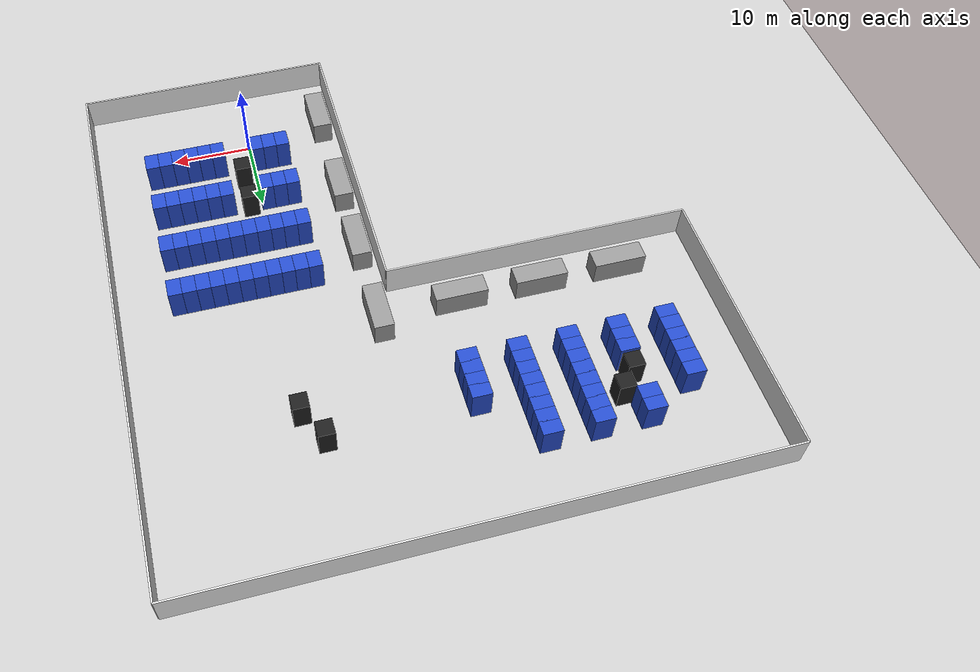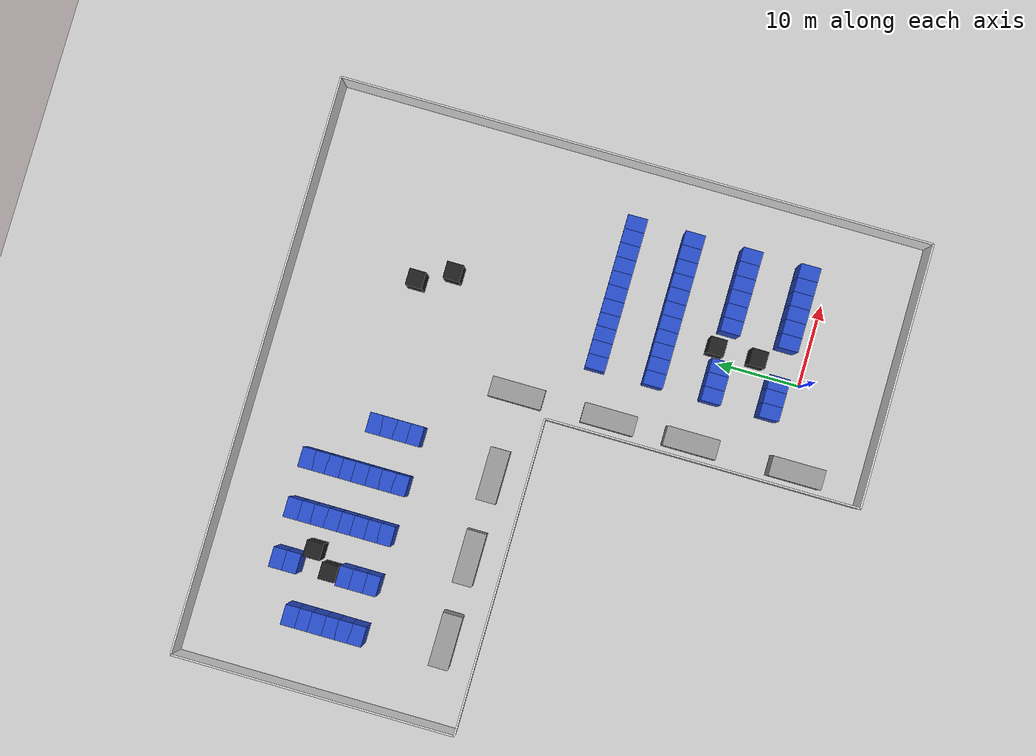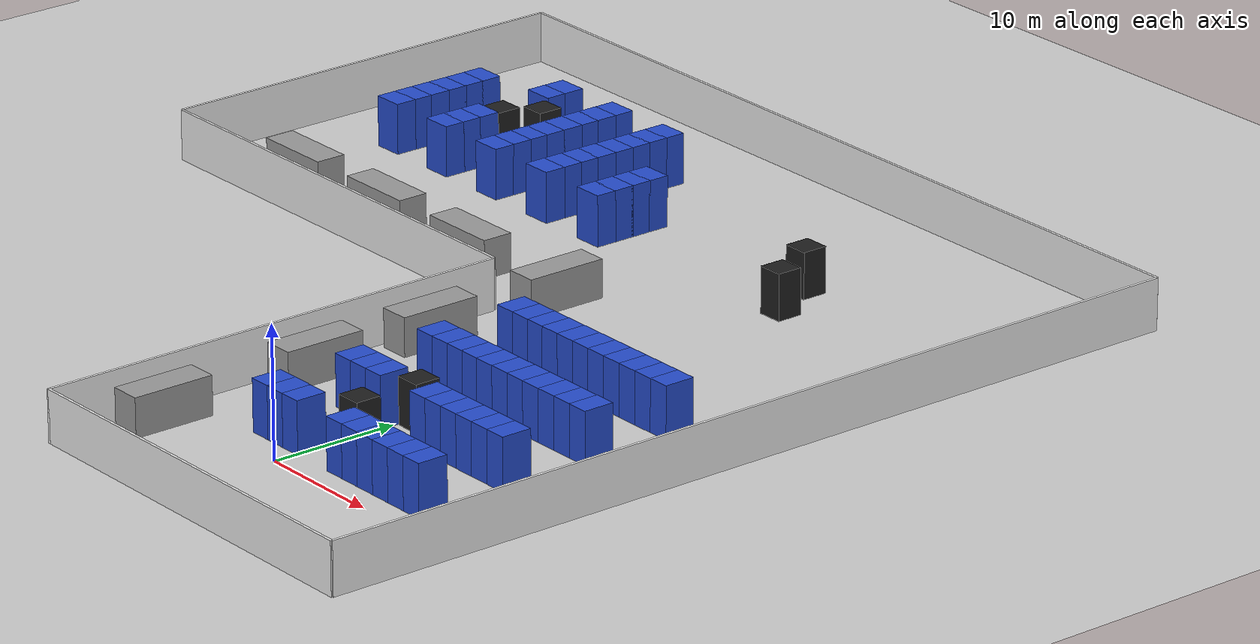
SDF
<?xml version="1.0" ?>
<sdf version="1.4">
  <world name="default">
    <!-- A ground plane -->
    <include>
      <uri>model://ground_plane</uri>
    </include>
    <!-- A global light source -->
    <include>
      <uri>model://sun</uri>
    </include>

    <model name="Wall_1">
      <static>true</static>
      <pose>20.0 26.0 2.0 0 0 0</pose>
      <link name="link">
        <collision name="collision">
          <geometry>
            <box>
              <size>0.2 72.0 4.0</size>
            </box>
          </geometry>
        </collision>
        <visual name="visual">
          <geometry>
            <box>
              <size>0.2 72.0 4.0</size>
            </box>
          </geometry>
          <material>
            <script>
              <uri>file://media/materials/scripts/gazebo.material</uri>
              <name>Gazebo/White</name>
            </script>
          </material>
        </visual>
      </link>
    </model>

    <model name="Wall_2">
      <static>true</static>
      <pose>-50.0 45.0 2.0 0 0 0</pose>
      <link name="link">
        <collision name="collision">
          <geometry>
            <box>
              <size>0.2 34.0 4.0</size>
            </box>
          </geometry>
        </collision>
        <visual name="visual">
          <geometry>
            <box>
              <size>0.2 34.0 4.0</size>
            </box>
          </geometry>
          <material>
            <script>
              <uri>file://media/materials/scripts/gazebo.material</uri>
              <name>Gazebo/White</name>
            </script>
          </material>
        </visual>
      </link>
    </model>

    <model name="Wall_3">
      <static>true</static>
      <pose>-12.0 8.9 2.0 0 0 0</pose>
      <link name="link">
        <collision name="collision">
          <geometry>
            <box>
              <size>0.2 38.0 4.0</size>
            </box>
          </geometry>
        </collision>
        <visual name="visual">
          <geometry>
            <box>
              <size>0.2 38.0 4.0</size>
            </box>
          </geometry>
          <material>
            <script>
              <uri>file://media/materials/scripts/gazebo.material</uri>
              <name>Gazebo/White</name>
            </script>
          </material>
        </visual>
      </link>
    </model>

    <model name="Wall_4">
      <static>true</static>
      <pose>4.0 -10.0 2.0 0 0 0</pose>
      <link name="link">
        <collision name="collision">
          <geometry>
            <box>
              <size>32.0 0.2 4.0</size>
            </box>
          </geometry>
        </collision>
        <visual name="visual">
          <geometry>
            <box>
              <size>32.0 0.2 4.0</size>
            </box>
          </geometry>
          <material>
            <script>
              <uri>file://media/materials/scripts/gazebo.material</uri>
              <name>Gazebo/White</name>
            </script>
          </material>
        </visual>
      </link>
    </model>

    <model name="Wall_5">
      <static>true</static>
      <pose>-15.0 62.0 2.0 0 0 0</pose>
      <link name="link">
        <collision name="collision">
          <geometry>
            <box>
              <size>70.0 0.2 4.0</size>
            </box>
          </geometry>
        </collision>
        <visual name="visual">
          <geometry>
            <box>
              <size>70.0 0.2 4.0</size>
            </box>
          </geometry>
          <material>
            <script>
              <uri>file://media/materials/scripts/gazebo.material</uri>
              <name>Gazebo/White</name>
            </script>
          </material>
        </visual>
      </link>
    </model>

    <model name="Wall_6">
      <static>true</static>
      <pose>-31.0 28.0 2.0 0 0 0</pose>
      <link name="link">
        <collision name="collision">
          <geometry>
            <box>
              <size>38.0 0.2 4.0</size>
            </box>
          </geometry>
        </collision>
        <visual name="visual">
          <geometry>
            <box>
              <size>38.0 0.2 4.0</size>
            </box>
          </geometry>
          <material>
            <script>
              <uri>file://media/materials/scripts/gazebo.material</uri>
              <name>Gazebo/White</name>
            </script>
          </material>
        </visual>
      </link>
    </model>

    <model name="Cabinet2_0046">
      <static>true</static>
      <pose>-4.1 3.0 2.0 0 0 0</pose>
      <link name="link">
        <collision name="collision">
          <geometry>
            <box>
              <size>1.7 2.4 4.0</size>
            </box>
          </geometry>
        </collision>
        <visual name="visual">
          <geometry>
            <box>
              <size>1.7 2.4 4.0</size>
            </box>
          </geometry>
          <material>
            <script>
              <uri>file://media/materials/scripts/gazebo.material</uri>
              <name>Gazebo/Blue</name>
            </script>
          </material>
        </visual>
      </link>
    </model>

    <model name="Cabinet2_0047">
      <static>true</static>
      <pose>-2.4 3.0 2.0 0 0 0</pose>
      <link name="link">
        <collision name="collision">
          <geometry>
            <box>
              <size>1.7 2.4 4.0</size>
            </box>
          </geometry>
        </collision>
        <visual name="visual">
          <geometry>
            <box>
              <size>1.7 2.4 4.0</size>
            </box>
          </geometry>
          <material>
            <script>
              <uri>file://media/materials/scripts/gazebo.material</uri>
              <name>Gazebo/Blue</name>
            </script>
          </material>
        </visual>
      </link>
    </model>

    <model name="Cabinet2_0048">
      <static>true</static>
      <pose>-0.7 3.0 2.0 0 0 0</pose>
      <link name="link">
        <collision name="collision">
          <geometry>
            <box>
              <size>1.7 2.4 4.0</size>
            </box>
          </geometry>
        </collision>
        <visual name="visual">
          <geometry>
            <box>
              <size>1.7 2.4 4.0</size>
            </box>
          </geometry>
          <material>
            <script>
              <uri>file://media/materials/scripts/gazebo.material</uri>
              <name>Gazebo/Blue</name>
            </script>
          </material>
        </visual>
      </link>
    </model>

    <model name="Cabinet2_0033">
      <static>true</static>
      <pose>4.3 3.0 2.0 0 0 0</pose>
      <link name="link">
        <collision name="collision">
          <geometry>
            <box>
              <size>1.7 2.4 4.0</size>
            </box>
          </geometry>
        </collision>
        <visual name="visual">
          <geometry>
            <box>
              <size>1.7 2.4 4.0</size>
            </box>
          </geometry>
          <material>
            <script>
              <uri>file://media/materials/scripts/gazebo.material</uri>
              <name>Gazebo/Blue</name>
            </script>
          </material>
        </visual>
      </link>
    </model>

    <model name="Cabinet2_0032">
      <static>true</static>
      <pose>6.0 3.0 2.0 0 0 0</pose>
      <link name="link">
        <collision name="collision">
          <geometry>
            <box>
              <size>1.7 2.4 4.0</size>
            </box>
          </geometry>
        </collision>
        <visual name="visual">
          <geometry>
            <box>
              <size>1.7 2.4 4.0</size>
            </box>
          </geometry>
          <material>
            <script>
              <uri>file://media/materials/scripts/gazebo.material</uri>
              <name>Gazebo/Blue</name>
            </script>
          </material>
        </visual>
      </link>
    </model>

    <model name="Cabinet2_0031">
      <static>true</static>
      <pose>7.7 3.0 2.0 0 0 0</pose>
      <link name="link">
        <collision name="collision">
          <geometry>
            <box>
              <size>1.7 2.4 4.0</size>
            </box>
          </geometry>
        </collision>
        <visual name="visual">
          <geometry>
            <box>
              <size>1.7 2.4 4.0</size>
            </box>
          </geometry>
          <material>
            <script>
              <uri>file://media/materials/scripts/gazebo.material</uri>
              <name>Gazebo/Blue</name>
            </script>
          </material>
        </visual>
      </link>
    </model>

    <model name="Cabinet2_0030">
      <static>true</static>
      <pose>9.4 3.0 2.0 0 0 0</pose>
      <link name="link">
        <collision name="collision">
          <geometry>
            <box>
              <size>1.7 2.4 4.0</size>
            </box>
          </geometry>
        </collision>
        <visual name="visual">
          <geometry>
            <box>
              <size>1.7 2.4 4.0</size>
            </box>
          </geometry>
          <material>
            <script>
              <uri>file://media/materials/scripts/gazebo.material</uri>
              <name>Gazebo/Blue</name>
            </script>
          </material>
        </visual>
      </link>
    </model>

    <model name="Cabinet2_0029">
      <static>true</static>
      <pose>11.1 3.0 2.0 0 0 0</pose>
      <link name="link">
        <collision name="collision">
          <geometry>
            <box>
              <size>1.7 2.4 4.0</size>
            </box>
          </geometry>
        </collision>
        <visual name="visual">
          <geometry>
            <box>
              <size>1.7 2.4 4.0</size>
            </box>
          </geometry>
          <material>
            <script>
              <uri>file://media/materials/scripts/gazebo.material</uri>
              <name>Gazebo/Blue</name>
            </script>
          </material>
        </visual>
      </link>
    </model>

    <model name="Cabinet2_0028">
      <static>true</static>
      <pose>12.8 3.0 2.0 0 0 0</pose>
      <link name="link">
        <collision name="collision">
          <geometry>
            <box>
              <size>1.7 2.4 4.0</size>
            </box>
          </geometry>
        </collision>
        <visual name="visual">
          <geometry>
            <box>
              <size>1.7 2.4 4.0</size>
            </box>
          </geometry>
          <material>
            <script>
              <uri>file://media/materials/scripts/gazebo.material</uri>
              <name>Gazebo/Blue</name>
            </script>
          </material>
        </visual>
      </link>
    </model>

    <model name="Cabinet__1">
      <static>true</static>
      <pose>-4.1 10.0 2.0 0 0 0</pose>
      <link name="link">
        <collision name="collision">
          <geometry>
            <box>
              <size>1.7 2.4 4.0</size>
            </box>
          </geometry>
        </collision>
        <visual name="visual">
          <geometry>
            <box>
              <size>1.7 2.4 4.0</size>
            </box>
          </geometry>
          <material>
            <script>
              <uri>file://media/materials/scripts/gazebo.material</uri>
              <name>Gazebo/Blue</name>
            </script>
          </material>
        </visual>
      </link>
    </model>

    <model name="Cabinet__2">
      <static>true</static>
      <pose>-2.4 10.0 2.0 0 0 0</pose>
      <link name="link">
        <collision name="collision">
          <geometry>
            <box>
              <size>1.7 2.4 4.0</size>
            </box>
          </geometry>
        </collision>
        <visual name="visual">
          <geometry>
            <box>
              <size>1.7 2.4 4.0</size>
            </box>
          </geometry>
          <material>
            <script>
              <uri>file://media/materials/scripts/gazebo.material</uri>
              <name>Gazebo/Blue</name>
            </script>
          </material>
        </visual>
      </link>
    </model>

    <model name="Cabinet__3">
      <static>true</static>
      <pose>-0.7 10.0 2.0 0 0 0</pose>
      <link name="link">
        <collision name="collision">
          <geometry>
            <box>
              <size>1.7 2.4 4.0</size>
            </box>
          </geometry>
        </collision>
        <visual name="visual">
          <geometry>
            <box>
              <size>1.7 2.4 4.0</size>
            </box>
          </geometry>
          <material>
            <script>
              <uri>file://media/materials/scripts/gazebo.material</uri>
              <name>Gazebo/Blue</name>
            </script>
          </material>
        </visual>
      </link>
    </model>

    <model name="Cabinet__4">
      <static>true</static>
      <pose>4.3 10.0 2.0 0 0 0</pose>
      <link name="link">
        <collision name="collision">
          <geometry>
            <box>
              <size>1.7 2.4 4.0</size>
            </box>
          </geometry>
        </collision>
        <visual name="visual">
          <geometry>
            <box>
              <size>1.7 2.4 4.0</size>
            </box>
          </geometry>
          <material>
            <script>
              <uri>file://media/materials/scripts/gazebo.material</uri>
              <name>Gazebo/Blue</name>
            </script>
          </material>
        </visual>
      </link>
    </model>

    <model name="Cabinet__5">
      <static>true</static>
      <pose>6.0 10.0 2.0 0 0 0</pose>
      <link name="link">
        <collision name="collision">
          <geometry>
            <box>
              <size>1.7 2.4 4.0</size>
            </box>
          </geometry>
        </collision>
        <visual name="visual">
          <geometry>
            <box>
              <size>1.7 2.4 4.0</size>
            </box>
          </geometry>
          <material>
            <script>
              <uri>file://media/materials/scripts/gazebo.material</uri>
              <name>Gazebo/Blue</name>
            </script>
          </material>
        </visual>
      </link>
    </model>

    <model name="Cabinet__6">
      <static>true</static>
      <pose>7.7 10.0 2.0 0 0 0</pose>
      <link name="link">
        <collision name="collision">
          <geometry>
            <box>
              <size>1.7 2.4 4.0</size>
            </box>
          </geometry>
        </collision>
        <visual name="visual">
          <geometry>
            <box>
              <size>1.7 2.4 4.0</size>
            </box>
          </geometry>
          <material>
            <script>
              <uri>file://media/materials/scripts/gazebo.material</uri>
              <name>Gazebo/Blue</name>
            </script>
          </material>
        </visual>
      </link>
    </model>

    <model name="Cabinet__7">
      <static>true</static>
      <pose>9.4 10.0 2.0 0 0 0</pose>
      <link name="link">
        <collision name="collision">
          <geometry>
            <box>
              <size>1.7 2.4 4.0</size>
            </box>
          </geometry>
        </collision>
        <visual name="visual">
          <geometry>
            <box>
              <size>1.7 2.4 4.0</size>
            </box>
          </geometry>
          <material>
            <script>
              <uri>file://media/materials/scripts/gazebo.material</uri>
              <name>Gazebo/Blue</name>
            </script>
          </material>
        </visual>
      </link>
    </model>

    <model name="Cabinet__8">
      <static>true</static>
      <pose>11.1 10.0 2.0 0 0 0</pose>
      <link name="link">
        <collision name="collision">
          <geometry>
            <box>
              <size>1.7 2.4 4.0</size>
            </box>
          </geometry>
        </collision>
        <visual name="visual">
          <geometry>
            <box>
              <size>1.7 2.4 4.0</size>
            </box>
          </geometry>
          <material>
            <script>
              <uri>file://media/materials/scripts/gazebo.material</uri>
              <name>Gazebo/Blue</name>
            </script>
          </material>
        </visual>
      </link>
    </model>

    <model name="Cabinet__9">
      <static>true</static>
      <pose>12.8 10.0 2.0 0 0 0</pose>
      <link name="link">
        <collision name="collision">
          <geometry>
            <box>
              <size>1.7 2.4 4.0</size>
            </box>
          </geometry>
        </collision>
        <visual name="visual">
          <geometry>
            <box>
              <size>1.7 2.4 4.0</size>
            </box>
          </geometry>
          <material>
            <script>
              <uri>file://media/materials/scripts/gazebo.material</uri>
              <name>Gazebo/Blue</name>
            </script>
          </material>
        </visual>
      </link>
    </model>

    <model name="Cabinet2_0010">
      <static>true</static>
      <pose>-4.1 17.0 2.0 0 0 0</pose>
      <link name="link">
        <collision name="collision">
          <geometry>
            <box>
              <size>1.7 2.4 4.0</size>
            </box>
          </geometry>
        </collision>
        <visual name="visual">
          <geometry>
            <box>
              <size>1.7 2.4 4.0</size>
            </box>
          </geometry>
          <material>
            <script>
              <uri>file://media/materials/scripts/gazebo.material</uri>
              <name>Gazebo/Blue</name>
            </script>
          </material>
        </visual>
      </link>
    </model>

    <model name="Cabinet2__10">
      <static>true</static>
      <pose>-2.4 17.0 2.0 0 0 0</pose>
      <link name="link">
        <collision name="collision">
          <geometry>
            <box>
              <size>1.7 2.4 4.0</size>
            </box>
          </geometry>
        </collision>
        <visual name="visual">
          <geometry>
            <box>
              <size>1.7 2.4 4.0</size>
            </box>
          </geometry>
          <material>
            <script>
              <uri>file://media/materials/scripts/gazebo.material</uri>
              <name>Gazebo/Blue</name>
            </script>
          </material>
        </visual>
      </link>
    </model>

    <model name="Cabinet2__11">
      <static>true</static>
      <pose>-0.7 17.0 2.0 0 0 0</pose>
      <link name="link">
        <collision name="collision">
          <geometry>
            <box>
              <size>1.7 2.4 4.0</size>
            </box>
          </geometry>
        </collision>
        <visual name="visual">
          <geometry>
            <box>
              <size>1.7 2.4 4.0</size>
            </box>
          </geometry>
          <material>
            <script>
              <uri>file://media/materials/scripts/gazebo.material</uri>
              <name>Gazebo/Blue</name>
            </script>
          </material>
        </visual>
      </link>
    </model>

    <model name="Cabinet2_0012">
      <static>true</static>
      <pose>0.9 17.0 2.0 0 0 0</pose>
      <link name="link">
        <collision name="collision">
          <geometry>
            <box>
              <size>1.7 2.4 4.0</size>
            </box>
          </geometry>
        </collision>
        <visual name="visual">
          <geometry>
            <box>
              <size>1.7 2.4 4.0</size>
            </box>
          </geometry>
          <material>
            <script>
              <uri>file://media/materials/scripts/gazebo.material</uri>
              <name>Gazebo/Blue</name>
            </script>
          </material>
        </visual>
      </link>
    </model>

    <model name="Cabinet2_0013">
      <static>true</static>
      <pose>2.6 17.0 2.0 0 0 0</pose>
      <link name="link">
        <collision name="collision">
          <geometry>
            <box>
              <size>1.7 2.4 4.0</size>
            </box>
          </geometry>
        </collision>
        <visual name="visual">
          <geometry>
            <box>
              <size>1.7 2.4 4.0</size>
            </box>
          </geometry>
          <material>
            <script>
              <uri>file://media/materials/scripts/gazebo.material</uri>
              <name>Gazebo/Blue</name>
            </script>
          </material>
        </visual>
      </link>
    </model>

    <model name="Cabinet2_0011">
      <static>true</static>
      <pose>4.3 17.0 2.0 0 0 0</pose>
      <link name="link">
        <collision name="collision">
          <geometry>
            <box>
              <size>1.7 2.4 4.0</size>
            </box>
          </geometry>
        </collision>
        <visual name="visual">
          <geometry>
            <box>
              <size>1.7 2.4 4.0</size>
            </box>
          </geometry>
          <material>
            <script>
              <uri>file://media/materials/scripts/gazebo.material</uri>
              <name>Gazebo/Blue</name>
            </script>
          </material>
        </visual>
      </link>
    </model>

    <model name="Cabinet2_0014">
      <static>true</static>
      <pose>6.0 17.0 2.0 0 0 0</pose>
      <link name="link">
        <collision name="collision">
          <geometry>
            <box>
              <size>1.7 2.4 4.0</size>
            </box>
          </geometry>
        </collision>
        <visual name="visual">
          <geometry>
            <box>
              <size>1.7 2.4 4.0</size>
            </box>
          </geometry>
          <material>
            <script>
              <uri>file://media/materials/scripts/gazebo.material</uri>
              <name>Gazebo/Blue</name>
            </script>
          </material>
        </visual>
      </link>
    </model>

    <model name="Cabinet2_0015">
      <static>true</static>
      <pose>7.7 17.0 2.0 0 0 0</pose>
      <link name="link">
        <collision name="collision">
          <geometry>
            <box>
              <size>1.7 2.4 4.0</size>
            </box>
          </geometry>
        </collision>
        <visual name="visual">
          <geometry>
            <box>
              <size>1.7 2.4 4.0</size>
            </box>
          </geometry>
          <material>
            <script>
              <uri>file://media/materials/scripts/gazebo.material</uri>
              <name>Gazebo/Blue</name>
            </script>
          </material>
        </visual>
      </link>
    </model>

    <model name="Cabinet2_0016">
      <static>true</static>
      <pose>9.4 17.0 2.0 0 0 0</pose>
      <link name="link">
        <collision name="collision">
          <geometry>
            <box>
              <size>1.7 2.4 4.0</size>
            </box>
          </geometry>
        </collision>
        <visual name="visual">
          <geometry>
            <box>
              <size>1.7 2.4 4.0</size>
            </box>
          </geometry>
          <material>
            <script>
              <uri>file://media/materials/scripts/gazebo.material</uri>
              <name>Gazebo/Blue</name>
            </script>
          </material>
        </visual>
      </link>
    </model>

    <model name="Cabinet2__12">
      <static>true</static>
      <pose>11.1 17.0 2.0 0 0 0</pose>
      <link name="link">
        <collision name="collision">
          <geometry>
            <box>
              <size>1.7 2.4 4.0</size>
            </box>
          </geometry>
        </collision>
        <visual name="visual">
          <geometry>
            <box>
              <size>1.7 2.4 4.0</size>
            </box>
          </geometry>
          <material>
            <script>
              <uri>file://media/materials/scripts/gazebo.material</uri>
              <name>Gazebo/Blue</name>
            </script>
          </material>
        </visual>
      </link>
    </model>

    <model name="Cabinet2__13">
      <static>true</static>
      <pose>12.8 17.0 2.0 0 0 0</pose>
      <link name="link">
        <collision name="collision">
          <geometry>
            <box>
              <size>1.7 2.4 4.0</size>
            </box>
          </geometry>
        </collision>
        <visual name="visual">
          <geometry>
            <box>
              <size>1.7 2.4 4.0</size>
            </box>
          </geometry>
          <material>
            <script>
              <uri>file://media/materials/scripts/gazebo.material</uri>
              <name>Gazebo/Blue</name>
            </script>
          </material>
        </visual>
      </link>
    </model>

    <model name="Cabinet__14">
      <static>true</static>
      <pose>-4.1 24.0 2.0 0 0 0</pose>
      <link name="link">
        <collision name="collision">
          <geometry>
            <box>
              <size>1.7 2.4 4.0</size>
            </box>
          </geometry>
        </collision>
        <visual name="visual">
          <geometry>
            <box>
              <size>1.7 2.4 4.0</size>
            </box>
          </geometry>
          <material>
            <script>
              <uri>file://media/materials/scripts/gazebo.material</uri>
              <name>Gazebo/Blue</name>
            </script>
          </material>
        </visual>
      </link>
    </model>

    <model name="Cabinet__15">
      <static>true</static>
      <pose>-2.4 24.0 2.0 0 0 0</pose>
      <link name="link">
        <collision name="collision">
          <geometry>
            <box>
              <size>1.7 2.4 4.0</size>
            </box>
          </geometry>
        </collision>
        <visual name="visual">
          <geometry>
            <box>
              <size>1.7 2.4 4.0</size>
            </box>
          </geometry>
          <material>
            <script>
              <uri>file://media/materials/scripts/gazebo.material</uri>
              <name>Gazebo/Blue</name>
            </script>
          </material>
        </visual>
      </link>
    </model>

    <model name="Cabinet__16">
      <static>true</static>
      <pose>-0.7 24.0 2.0 0 0 0</pose>
      <link name="link">
        <collision name="collision">
          <geometry>
            <box>
              <size>1.7 2.4 4.0</size>
            </box>
          </geometry>
        </collision>
        <visual name="visual">
          <geometry>
            <box>
              <size>1.7 2.4 4.0</size>
            </box>
          </geometry>
          <material>
            <script>
              <uri>file://media/materials/scripts/gazebo.material</uri>
              <name>Gazebo/Blue</name>
            </script>
          </material>
        </visual>
      </link>
    </model>

    <model name="Cabinet__17">
      <static>true</static>
      <pose>0.9 24.0 2.0 0 0 0</pose>
      <link name="link">
        <collision name="collision">
          <geometry>
            <box>
              <size>1.7 2.4 4.0</size>
            </box>
          </geometry>
        </collision>
        <visual name="visual">
          <geometry>
            <box>
              <size>1.7 2.4 4.0</size>
            </box>
          </geometry>
          <material>
            <script>
              <uri>file://media/materials/scripts/gazebo.material</uri>
              <name>Gazebo/Blue</name>
            </script>
          </material>
        </visual>
      </link>
    </model>

    <model name="Cabinet__18">
      <static>true</static>
      <pose>2.6 24.0 2.0 0 0 0</pose>
      <link name="link">
        <collision name="collision">
          <geometry>
            <box>
              <size>1.7 2.4 4.0</size>
            </box>
          </geometry>
        </collision>
        <visual name="visual">
          <geometry>
            <box>
              <size>1.7 2.4 4.0</size>
            </box>
          </geometry>
          <material>
            <script>
              <uri>file://media/materials/scripts/gazebo.material</uri>
              <name>Gazebo/Blue</name>
            </script>
          </material>
        </visual>
      </link>
    </model>

    <model name="Cabinet__19">
      <static>true</static>
      <pose>4.3 24.0 2.0 0 0 0</pose>
      <link name="link">
        <collision name="collision">
          <geometry>
            <box>
              <size>1.7 2.4 4.0</size>
            </box>
          </geometry>
        </collision>
        <visual name="visual">
          <geometry>
            <box>
              <size>1.7 2.4 4.0</size>
            </box>
          </geometry>
          <material>
            <script>
              <uri>file://media/materials/scripts/gazebo.material</uri>
              <name>Gazebo/Blue</name>
            </script>
          </material>
        </visual>
      </link>
    </model>

    <model name="Cabinet__20">
      <static>true</static>
      <pose>6.0 24.0 2.0 0 0 0</pose>
      <link name="link">
        <collision name="collision">
          <geometry>
            <box>
              <size>1.7 2.4 4.0</size>
            </box>
          </geometry>
        </collision>
        <visual name="visual">
          <geometry>
            <box>
              <size>1.7 2.4 4.0</size>
            </box>
          </geometry>
          <material>
            <script>
              <uri>file://media/materials/scripts/gazebo.material</uri>
              <name>Gazebo/Blue</name>
            </script>
          </material>
        </visual>
      </link>
    </model>

    <model name="Cabinet__21">
      <static>true</static>
      <pose>7.7 24.0 2.0 0 0 0</pose>
      <link name="link">
        <collision name="collision">
          <geometry>
            <box>
              <size>1.7 2.4 4.0</size>
            </box>
          </geometry>
        </collision>
        <visual name="visual">
          <geometry>
            <box>
              <size>1.7 2.4 4.0</size>
            </box>
          </geometry>
          <material>
            <script>
              <uri>file://media/materials/scripts/gazebo.material</uri>
              <name>Gazebo/Blue</name>
            </script>
          </material>
        </visual>
      </link>
    </model>

    <model name="Cabinet__22">
      <static>true</static>
      <pose>9.4 24.0 2.0 0 0 0</pose>
      <link name="link">
        <collision name="collision">
          <geometry>
            <box>
              <size>1.7 2.4 4.0</size>
            </box>
          </geometry>
        </collision>
        <visual name="visual">
          <geometry>
            <box>
              <size>1.7 2.4 4.0</size>
            </box>
          </geometry>
          <material>
            <script>
              <uri>file://media/materials/scripts/gazebo.material</uri>
              <name>Gazebo/Blue</name>
            </script>
          </material>
        </visual>
      </link>
    </model>

    <model name="Cabinet__23">
      <static>true</static>
      <pose>11.1 24.0 2.0 0 0 0</pose>
      <link name="link">
        <collision name="collision">
          <geometry>
            <box>
              <size>1.7 2.4 4.0</size>
            </box>
          </geometry>
        </collision>
        <visual name="visual">
          <geometry>
            <box>
              <size>1.7 2.4 4.0</size>
            </box>
          </geometry>
          <material>
            <script>
              <uri>file://media/materials/scripts/gazebo.material</uri>
              <name>Gazebo/Blue</name>
            </script>
          </material>
        </visual>
      </link>
    </model>

    <model name="Cabinet__24">
      <static>true</static>
      <pose>12.8 24.0 2.0 0 0 0</pose>
      <link name="link">
        <collision name="collision">
          <geometry>
            <box>
              <size>1.7 2.4 4.0</size>
            </box>
          </geometry>
        </collision>
        <visual name="visual">
          <geometry>
            <box>
              <size>1.7 2.4 4.0</size>
            </box>
          </geometry>
          <material>
            <script>
              <uri>file://media/materials/scripts/gazebo.material</uri>
              <name>Gazebo/Blue</name>
            </script>
          </material>
        </visual>
      </link>
    </model>

    <model name="Cabinet4__25">
      <static>true</static>
      <pose>-18.0 42.0 2.0 0 0 0</pose>
      <link name="link">
        <collision name="collision">
          <geometry>
            <box>
              <size>2.4 1.7 4.0</size>
            </box>
          </geometry>
        </collision>
        <visual name="visual">
          <geometry>
            <box>
              <size>2.4 1.7 4.0</size>
            </box>
          </geometry>
          <material>
            <script>
              <uri>file://media/materials/scripts/gazebo.material</uri>
              <name>Gazebo/Blue</name>
            </script>
          </material>
        </visual>
      </link>
    </model>

    <model name="Cabinet4__26">
      <static>true</static>
      <pose>-18.0 43.6 2.0 0 0 0</pose>
      <link name="link">
        <collision name="collision">
          <geometry>
            <box>
              <size>2.4 1.7 4.0</size>
            </box>
          </geometry>
        </collision>
        <visual name="visual">
          <geometry>
            <box>
              <size>2.4 1.7 4.0</size>
            </box>
          </geometry>
          <material>
            <script>
              <uri>file://media/materials/scripts/gazebo.material</uri>
              <name>Gazebo/Blue</name>
            </script>
          </material>
        </visual>
      </link>
    </model>

    <model name="Cabinet4__27">
      <static>true</static>
      <pose>-18.0 45.2 2.0 0 0 0</pose>
      <link name="link">
        <collision name="collision">
          <geometry>
            <box>
              <size>2.4 1.7 4.0</size>
            </box>
          </geometry>
        </collision>
        <visual name="visual">
          <geometry>
            <box>
              <size>2.4 1.7 4.0</size>
            </box>
          </geometry>
          <material>
            <script>
              <uri>file://media/materials/scripts/gazebo.material</uri>
              <name>Gazebo/Blue</name>
            </script>
          </material>
        </visual>
      </link>
    </model>

    <model name="Cabinet4__28">
      <static>true</static>
      <pose>-18.0 46.8 2.0 0 0 0</pose>
      <link name="link">
        <collision name="collision">
          <geometry>
            <box>
              <size>2.4 1.7 4.0</size>
            </box>
          </geometry>
        </collision>
        <visual name="visual">
          <geometry>
            <box>
              <size>2.4 1.7 4.0</size>
            </box>
          </geometry>
          <material>
            <script>
              <uri>file://media/materials/scripts/gazebo.material</uri>
              <name>Gazebo/Blue</name>
            </script>
          </material>
        </visual>
      </link>
    </model>

    <model name="Cabinet4__29">
      <static>true</static>
      <pose>-24.0 42.0 2.0 0 0 0</pose>
      <link name="link">
        <collision name="collision">
          <geometry>
            <box>
              <size>2.4 1.7 4.0</size>
            </box>
          </geometry>
        </collision>
        <visual name="visual">
          <geometry>
            <box>
              <size>2.4 1.7 4.0</size>
            </box>
          </geometry>
          <material>
            <script>
              <uri>file://media/materials/scripts/gazebo.material</uri>
              <name>Gazebo/Blue</name>
            </script>
          </material>
        </visual>
      </link>
    </model>

    <model name="Cabinet4__30">
      <static>true</static>
      <pose>-24.0 43.6 2.0 0 0 0</pose>
      <link name="link">
        <collision name="collision">
          <geometry>
            <box>
              <size>2.4 1.7 4.0</size>
            </box>
          </geometry>
        </collision>
        <visual name="visual">
          <geometry>
            <box>
              <size>2.4 1.7 4.0</size>
            </box>
          </geometry>
          <material>
            <script>
              <uri>file://media/materials/scripts/gazebo.material</uri>
              <name>Gazebo/Blue</name>
            </script>
          </material>
        </visual>
      </link>
    </model>

    <model name="Cabinet4__31">
      <static>true</static>
      <pose>-24.0 45.2 2.0 0 0 0</pose>
      <link name="link">
        <collision name="collision">
          <geometry>
            <box>
              <size>2.4 1.7 4.0</size>
            </box>
          </geometry>
        </collision>
        <visual name="visual">
          <geometry>
            <box>
              <size>2.4 1.7 4.0</size>
            </box>
          </geometry>
          <material>
            <script>
              <uri>file://media/materials/scripts/gazebo.material</uri>
              <name>Gazebo/Blue</name>
            </script>
          </material>
        </visual>
      </link>
    </model>

    <model name="Cabinet4__32">
      <static>true</static>
      <pose>-24.0 46.8 2.0 0 0 0</pose>
      <link name="link">
        <collision name="collision">
          <geometry>
            <box>
              <size>2.4 1.7 4.0</size>
            </box>
          </geometry>
        </collision>
        <visual name="visual">
          <geometry>
            <box>
              <size>2.4 1.7 4.0</size>
            </box>
          </geometry>
          <material>
            <script>
              <uri>file://media/materials/scripts/gazebo.material</uri>
              <name>Gazebo/Blue</name>
            </script>
          </material>
        </visual>
      </link>
    </model>

    <model name="Cabinet4__33">
      <static>true</static>
      <pose>-24.0 48.4 2.0 0 0 0</pose>
      <link name="link">
        <collision name="collision">
          <geometry>
            <box>
              <size>2.4 1.7 4.0</size>
            </box>
          </geometry>
        </collision>
        <visual name="visual">
          <geometry>
            <box>
              <size>2.4 1.7 4.0</size>
            </box>
          </geometry>
          <material>
            <script>
              <uri>file://media/materials/scripts/gazebo.material</uri>
              <name>Gazebo/Blue</name>
            </script>
          </material>
        </visual>
      </link>
    </model>

    <model name="Cabinet4__34">
      <static>true</static>
      <pose>-24.0 50.0 2.0 0 0 0</pose>
      <link name="link">
        <collision name="collision">
          <geometry>
            <box>
              <size>2.4 1.7 4.0</size>
            </box>
          </geometry>
        </collision>
        <visual name="visual">
          <geometry>
            <box>
              <size>2.4 1.7 4.0</size>
            </box>
          </geometry>
          <material>
            <script>
              <uri>file://media/materials/scripts/gazebo.material</uri>
              <name>Gazebo/Blue</name>
            </script>
          </material>
        </visual>
      </link>
    </model>

    <model name="Cabinet4__35">
      <static>true</static>
      <pose>-24.0 51.6 2.0 0 0 0</pose>
      <link name="link">
        <collision name="collision">
          <geometry>
            <box>
              <size>2.4 1.7 4.0</size>
            </box>
          </geometry>
        </collision>
        <visual name="visual">
          <geometry>
            <box>
              <size>2.4 1.7 4.0</size>
            </box>
          </geometry>
          <material>
            <script>
              <uri>file://media/materials/scripts/gazebo.material</uri>
              <name>Gazebo/Blue</name>
            </script>
          </material>
        </visual>
      </link>
    </model>

    <model name="Cabinet4__36">
      <static>true</static>
      <pose>-24.0 53.2 2.0 0 0 0</pose>
      <link name="link">
        <collision name="collision">
          <geometry>
            <box>
              <size>2.4 1.7 4.0</size>
            </box>
          </geometry>
        </collision>
        <visual name="visual">
          <geometry>
            <box>
              <size>2.4 1.7 4.0</size>
            </box>
          </geometry>
          <material>
            <script>
              <uri>file://media/materials/scripts/gazebo.material</uri>
              <name>Gazebo/Blue</name>
            </script>
          </material>
        </visual>
      </link>
    </model>

    <model name="Cabinet4__37">
      <static>true</static>
      <pose>-30.0 42.0 2.0 0 0 0</pose>
      <link name="link">
        <collision name="collision">
          <geometry>
            <box>
              <size>2.4 1.7 4.0</size>
            </box>
          </geometry>
        </collision>
        <visual name="visual">
          <geometry>
            <box>
              <size>2.4 1.7 4.0</size>
            </box>
          </geometry>
          <material>
            <script>
              <uri>file://media/materials/scripts/gazebo.material</uri>
              <name>Gazebo/Blue</name>
            </script>
          </material>
        </visual>
      </link>
    </model>

    <model name="Cabinet4__38">
      <static>true</static>
      <pose>-30.0 43.6 2.0 0 0 0</pose>
      <link name="link">
        <collision name="collision">
          <geometry>
            <box>
              <size>2.4 1.7 4.0</size>
            </box>
          </geometry>
        </collision>
        <visual name="visual">
          <geometry>
            <box>
              <size>2.4 1.7 4.0</size>
            </box>
          </geometry>
          <material>
            <script>
              <uri>file://media/materials/scripts/gazebo.material</uri>
              <name>Gazebo/Blue</name>
            </script>
          </material>
        </visual>
      </link>
    </model>

    <model name="Cabinet4__39">
      <static>true</static>
      <pose>-30.0 45.2 2.0 0 0 0</pose>
      <link name="link">
        <collision name="collision">
          <geometry>
            <box>
              <size>2.4 1.7 4.0</size>
            </box>
          </geometry>
        </collision>
        <visual name="visual">
          <geometry>
            <box>
              <size>2.4 1.7 4.0</size>
            </box>
          </geometry>
          <material>
            <script>
              <uri>file://media/materials/scripts/gazebo.material</uri>
              <name>Gazebo/Blue</name>
            </script>
          </material>
        </visual>
      </link>
    </model>

    <model name="Cabinet4__40">
      <static>true</static>
      <pose>-30.0 46.8 2.0 0 0 0</pose>
      <link name="link">
        <collision name="collision">
          <geometry>
            <box>
              <size>2.4 1.7 4.0</size>
            </box>
          </geometry>
        </collision>
        <visual name="visual">
          <geometry>
            <box>
              <size>2.4 1.7 4.0</size>
            </box>
          </geometry>
          <material>
            <script>
              <uri>file://media/materials/scripts/gazebo.material</uri>
              <name>Gazebo/Blue</name>
            </script>
          </material>
        </visual>
      </link>
    </model>

    <model name="Cabinet4__41">
      <static>true</static>
      <pose>-30.0 48.4 2.0 0 0 0</pose>
      <link name="link">
        <collision name="collision">
          <geometry>
            <box>
              <size>2.4 1.7 4.0</size>
            </box>
          </geometry>
        </collision>
        <visual name="visual">
          <geometry>
            <box>
              <size>2.4 1.7 4.0</size>
            </box>
          </geometry>
          <material>
            <script>
              <uri>file://media/materials/scripts/gazebo.material</uri>
              <name>Gazebo/Blue</name>
            </script>
          </material>
        </visual>
      </link>
    </model>

    <model name="Cabinet4__42">
      <static>true</static>
      <pose>-30.0 50.0 2.0 0 0 0</pose>
      <link name="link">
        <collision name="collision">
          <geometry>
            <box>
              <size>2.4 1.7 4.0</size>
            </box>
          </geometry>
        </collision>
        <visual name="visual">
          <geometry>
            <box>
              <size>2.4 1.7 4.0</size>
            </box>
          </geometry>
          <material>
            <script>
              <uri>file://media/materials/scripts/gazebo.material</uri>
              <name>Gazebo/Blue</name>
            </script>
          </material>
        </visual>
      </link>
    </model>

    <model name="Cabinet4__43">
      <static>true</static>
      <pose>-30.0 51.6 2.0 0 0 0</pose>
      <link name="link">
        <collision name="collision">
          <geometry>
            <box>
              <size>2.4 1.7 4.0</size>
            </box>
          </geometry>
        </collision>
        <visual name="visual">
          <geometry>
            <box>
              <size>2.4 1.7 4.0</size>
            </box>
          </geometry>
          <material>
            <script>
              <uri>file://media/materials/scripts/gazebo.material</uri>
              <name>Gazebo/Blue</name>
            </script>
          </material>
        </visual>
      </link>
    </model>

    <model name="Cabinet4__44">
      <static>true</static>
      <pose>-30.0 53.2 2.0 0 0 0</pose>
      <link name="link">
        <collision name="collision">
          <geometry>
            <box>
              <size>2.4 1.7 4.0</size>
            </box>
          </geometry>
        </collision>
        <visual name="visual">
          <geometry>
            <box>
              <size>2.4 1.7 4.0</size>
            </box>
          </geometry>
          <material>
            <script>
              <uri>file://media/materials/scripts/gazebo.material</uri>
              <name>Gazebo/Blue</name>
            </script>
          </material>
        </visual>
      </link>
    </model>

    <model name="Cabinet4__45">
      <static>true</static>
      <pose>-36.0 42.0 2.0 0 0 0</pose>
      <link name="link">
        <collision name="collision">
          <geometry>
            <box>
              <size>2.4 1.7 4.0</size>
            </box>
          </geometry>
        </collision>
        <visual name="visual">
          <geometry>
            <box>
              <size>2.4 1.7 4.0</size>
            </box>
          </geometry>
          <material>
            <script>
              <uri>file://media/materials/scripts/gazebo.material</uri>
              <name>Gazebo/Blue</name>
            </script>
          </material>
        </visual>
      </link>
    </model>

    <model name="Cabinet4__46">
      <static>true</static>
      <pose>-36.0 43.6 2.0 0 0 0</pose>
      <link name="link">
        <collision name="collision">
          <geometry>
            <box>
              <size>2.4 1.7 4.0</size>
            </box>
          </geometry>
        </collision>
        <visual name="visual">
          <geometry>
            <box>
              <size>2.4 1.7 4.0</size>
            </box>
          </geometry>
          <material>
            <script>
              <uri>file://media/materials/scripts/gazebo.material</uri>
              <name>Gazebo/Blue</name>
            </script>
          </material>
        </visual>
      </link>
    </model>

    <model name="Cabinet4__47">
      <static>true</static>
      <pose>-36.0 45.2 2.0 0 0 0</pose>
      <link name="link">
        <collision name="collision">
          <geometry>
            <box>
              <size>2.4 1.7 4.0</size>
            </box>
          </geometry>
        </collision>
        <visual name="visual">
          <geometry>
            <box>
              <size>2.4 1.7 4.0</size>
            </box>
          </geometry>
          <material>
            <script>
              <uri>file://media/materials/scripts/gazebo.material</uri>
              <name>Gazebo/Blue</name>
            </script>
          </material>
        </visual>
      </link>
    </model>

    <model name="Cabinet4__48">
      <static>true</static>
      <pose>-36.0 51.6 2.0 0 0 0</pose>
      <link name="link">
        <collision name="collision">
          <geometry>
            <box>
              <size>2.4 1.7 4.0</size>
            </box>
          </geometry>
        </collision>
        <visual name="visual">
          <geometry>
            <box>
              <size>2.4 1.7 4.0</size>
            </box>
          </geometry>
          <material>
            <script>
              <uri>file://media/materials/scripts/gazebo.material</uri>
              <name>Gazebo/Blue</name>
            </script>
          </material>
        </visual>
      </link>
    </model>

    <model name="Cabinet4__49">
      <static>true</static>
      <pose>-36.0 53.2 2.0 0 0 0</pose>
      <link name="link">
        <collision name="collision">
          <geometry>
            <box>
              <size>2.4 1.7 4.0</size>
            </box>
          </geometry>
        </collision>
        <visual name="visual">
          <geometry>
            <box>
              <size>2.4 1.7 4.0</size>
            </box>
          </geometry>
          <material>
            <script>
              <uri>file://media/materials/scripts/gazebo.material</uri>
              <name>Gazebo/Blue</name>
            </script>
          </material>
        </visual>
      </link>
    </model>

    <model name="Cabinet4__50">
      <static>true</static>
      <pose>-42.0 42.0 2.0 0 0 0</pose>
      <link name="link">
        <collision name="collision">
          <geometry>
            <box>
              <size>2.4 1.7 4.0</size>
            </box>
          </geometry>
        </collision>
        <visual name="visual">
          <geometry>
            <box>
              <size>2.4 1.7 4.0</size>
            </box>
          </geometry>
          <material>
            <script>
              <uri>file://media/materials/scripts/gazebo.material</uri>
              <name>Gazebo/Blue</name>
            </script>
          </material>
        </visual>
      </link>
    </model>

    <model name="Cabinet4__51">
      <static>true</static>
      <pose>-42.0 43.6 2.0 0 0 0</pose>
      <link name="link">
        <collision name="collision">
          <geometry>
            <box>
              <size>2.4 1.7 4.0</size>
            </box>
          </geometry>
        </collision>
        <visual name="visual">
          <geometry>
            <box>
              <size>2.4 1.7 4.0</size>
            </box>
          </geometry>
          <material>
            <script>
              <uri>file://media/materials/scripts/gazebo.material</uri>
              <name>Gazebo/Blue</name>
            </script>
          </material>
        </visual>
      </link>
    </model>

    <model name="Cabinet4__52">
      <static>true</static>
      <pose>-42.0 45.2 2.0 0 0 0</pose>
      <link name="link">
        <collision name="collision">
          <geometry>
            <box>
              <size>2.4 1.7 4.0</size>
            </box>
          </geometry>
        </collision>
        <visual name="visual">
          <geometry>
            <box>
              <size>2.4 1.7 4.0</size>
            </box>
          </geometry>
          <material>
            <script>
              <uri>file://media/materials/scripts/gazebo.material</uri>
              <name>Gazebo/Blue</name>
            </script>
          </material>
        </visual>
      </link>
    </model>

    <model name="Cabinet4__53">
      <static>true</static>
      <pose>-42.0 46.8 2.0 0 0 0</pose>
      <link name="link">
        <collision name="collision">
          <geometry>
            <box>
              <size>2.4 1.7 4.0</size>
            </box>
          </geometry>
        </collision>
        <visual name="visual">
          <geometry>
            <box>
              <size>2.4 1.7 4.0</size>
            </box>
          </geometry>
          <material>
            <script>
              <uri>file://media/materials/scripts/gazebo.material</uri>
              <name>Gazebo/Blue</name>
            </script>
          </material>
        </visual>
      </link>
    </model>

    <model name="Cabinet4__54">
      <static>true</static>
      <pose>-42.0 48.4 2.0 0 0 0</pose>
      <link name="link">
        <collision name="collision">
          <geometry>
            <box>
              <size>2.4 1.7 4.0</size>
            </box>
          </geometry>
        </collision>
        <visual name="visual">
          <geometry>
            <box>
              <size>2.4 1.7 4.0</size>
            </box>
          </geometry>
          <material>
            <script>
              <uri>file://media/materials/scripts/gazebo.material</uri>
              <name>Gazebo/Blue</name>
            </script>
          </material>
        </visual>
      </link>
    </model>

    <model name="Cabinet4__55">
      <static>true</static>
      <pose>-42.0 50.0 2.0 0 0 0</pose>
      <link name="link">
        <collision name="collision">
          <geometry>
            <box>
              <size>2.4 1.7 4.0</size>
            </box>
          </geometry>
        </collision>
        <visual name="visual">
          <geometry>
            <box>
              <size>2.4 1.7 4.0</size>
            </box>
          </geometry>
          <material>
            <script>
              <uri>file://media/materials/scripts/gazebo.material</uri>
              <name>Gazebo/Blue</name>
            </script>
          </material>
        </visual>
      </link>
    </model>

    <model name="AirConditioning__A">
      <static>true</static>
      <pose>-10.0 -2.0 1.6 0 0 0</pose>
      <link name="link">
        <collision name="collision">
          <geometry>
            <box>
              <size>2.4 6.4 3.0</size>
            </box>
          </geometry>
        </collision>
        <visual name="visual">
          <geometry>
            <box>
              <size>2.4 6.4 3.0</size>
            </box>
          </geometry>
          <material>
            <script>
              <uri>file://media/materials/scripts/gazebo.material</uri>
              <name>Gazebo/Gray</name>
            </script>
          </material>
        </visual>
      </link>
    </model>

    <model name="AirConditioning__B">
      <static>true</static>
      <pose>-10.0 10.8 1.6 0 0 0</pose>
      <link name="link">
        <collision name="collision">
          <geometry>
            <box>
              <size>2.4 6.4 3.0</size>
            </box>
          </geometry>
        </collision>
        <visual name="visual">
          <geometry>
            <box>
              <size>2.4 6.4 3.0</size>
            </box>
          </geometry>
          <material>
            <script>
              <uri>file://media/materials/scripts/gazebo.material</uri>
              <name>Gazebo/Gray</name>
            </script>
          </material>
        </visual>
      </link>
    </model>

    <model name="AirConditioning__C">
      <static>true</static>
      <pose>-10.0 20.8 1.6 0 0 0</pose>
      <link name="link">
        <collision name="collision">
          <geometry>
            <box>
              <size>2.4 6.4 3.0</size>
            </box>
          </geometry>
        </collision>
        <visual name="visual">
          <geometry>
            <box>
              <size>2.4 6.4 3.0</size>
            </box>
          </geometry>
          <material>
            <script>
              <uri>file://media/materials/scripts/gazebo.material</uri>
              <name>Gazebo/Gray</name>
            </script>
          </material>
        </visual>
      </link>
    </model>

    <model name="AirConditioning__D">
      <static>true</static>
      <pose>-10.0 32.0 1.6 0 0 0</pose>
      <link name="link">
        <collision name="collision">
          <geometry>
            <box>
              <size>2.4 6.4 3.0</size>
            </box>
          </geometry>
        </collision>
        <visual name="visual">
          <geometry>
            <box>
              <size>2.4 6.4 3.0</size>
            </box>
          </geometry>
          <material>
            <script>
              <uri>file://media/materials/scripts/gazebo.material</uri>
              <name>Gazebo/Gray</name>
            </script>
          </material>
        </visual>
      </link>
    </model>

    <model name="AirConditionings__E">
      <static>true</static>
      <pose>-20.0 32.0 1.6 0 0 0</pose>
      <link name="link">
        <collision name="collision">
          <geometry>
            <box>
              <size>6.4 2.4 3.0</size>
            </box>
          </geometry>
        </collision>
        <visual name="visual">
          <geometry>
            <box>
              <size>6.4 2.4 3.0</size>
            </box>
          </geometry>
          <material>
            <script>
              <uri>file://media/materials/scripts/gazebo.material</uri>
              <name>Gazebo/Gray</name>
            </script>
          </material>
        </visual>
      </link>
    </model>

    <model name="AirConditionings__F">
      <static>true</static>
      <pose>-30.0 32.0 1.6 0 0 0</pose>
      <link name="link">
        <collision name="collision">
          <geometry>
            <box>
              <size>6.4 2.4 3.0</size>
            </box>
          </geometry>
        </collision>
        <visual name="visual">
          <geometry>
            <box>
              <size>6.4 2.4 3.0</size>
            </box>
          </geometry>
          <material>
            <script>
              <uri>file://media/materials/scripts/gazebo.material</uri>
              <name>Gazebo/Gray</name>
            </script>
          </material>
        </visual>
      </link>
    </model>

    <model name="AirConditionings__G">
      <static>true</static>
      <pose>-40.0 32.0 1.6 0 0 0</pose>
      <link name="link">
        <collision name="collision">
          <geometry>
            <box>
              <size>6.4 2.4 3.0</size>
            </box>
          </geometry>
        </collision>
        <visual name="visual">
          <geometry>
            <box>
              <size>6.4 2.4 3.0</size>
            </box>
          </geometry>
          <material>
            <script>
              <uri>file://media/materials/scripts/gazebo.material</uri>
              <name>Gazebo/Gray</name>
            </script>
          </material>
        </visual>
      </link>
    </model>

    <model name="DistributionBox__H">
      <static>true</static>
      <pose>1.6 6.0 2.0 0 0 0</pose>
      <link name="link">
        <collision name="collision">
          <geometry>
            <box>
              <size>2.0 2.0 3.6</size>
            </box>
          </geometry>
        </collision>
        <visual name="visual">
          <geometry>
            <box>
              <size>2.0 2.0 3.6</size>
            </box>
          </geometry>
          <material>
            <script>
              <uri>file://media/materials/scripts/gazebo.material</uri>
              <name>Gazebo/Black</name>
            </script>
          </material>
        </visual>
      </link>
    </model>

    <model name="DistributionBox__I">
      <static>true</static>
      <pose>1.6 43.0 2.0 0 0 0</pose>
      <link name="link">
        <collision name="collision">
          <geometry>
            <box>
              <size>2.0 2.0 3.6</size>
            </box>
          </geometry>
        </collision>
        <visual name="visual">
          <geometry>
            <box>
              <size>2.0 2.0 3.6</size>
            </box>
          </geometry>
          <material>
            <script>
              <uri>file://media/materials/scripts/gazebo.material</uri>
              <name>Gazebo/Black</name>
            </script>
          </material>
        </visual>
      </link>
    </model>

    <model name="DistributionBox__J">
      <static>true</static>
      <pose>1.6 11.0 2.0 0 0 0</pose>
      <link name="link">
        <collision name="collision">
          <geometry>
            <box>
              <size>2.0 2.0 3.6</size>
            </box>
          </geometry>
        </collision>
        <visual name="visual">
          <geometry>
            <box>
              <size>2.0 2.0 3.6</size>
            </box>
          </geometry>
          <material>
            <script>
              <uri>file://media/materials/scripts/gazebo.material</uri>
              <name>Gazebo/Black</name>
            </script>
          </material>
        </visual>
      </link>
    </model>

    <model name="DistributionBox__K">
      <static>true</static>
      <pose>-0.4 47.0 2.0 0 0 0</pose>
      <link name="link">
        <collision name="collision">
          <geometry>
            <box>
              <size>2.0 2.0 3.6</size>
            </box>
          </geometry>
        </collision>
        <visual name="visual">
          <geometry>
            <box>
              <size>2.0 2.0 3.6</size>
            </box>
          </geometry>
          <material>
            <script>
              <uri>file://media/materials/scripts/gazebo.material</uri>
              <name>Gazebo/Black</name>
            </script>
          </material>
        </visual>
      </link>
    </model>

    <model name="DistributionBox__L">
      <static>true</static>
      <pose>-36.0 47.2 2.0 0 0 0</pose>
      <link name="link">
        <collision name="collision">
          <geometry>
            <box>
              <size>2.0 2.0 3.6</size>
            </box>
          </geometry>
        </collision>
        <visual name="visual">
          <geometry>
            <box>
              <size>2.0 2.0 3.6</size>
            </box>
          </geometry>
          <material>
            <script>
              <uri>file://media/materials/scripts/gazebo.material</uri>
              <name>Gazebo/Black</name>
            </script>
          </material>
        </visual>
      </link>
    </model>

    <model name="DistributionBox__M">
      <static>true</static>
      <pose>-34.0 49.6 2.0 0 0 0</pose>
      <link name="link">
        <collision name="collision">
          <geometry>
            <box>
              <size>2.0 2.0 3.6</size>
            </box>
          </geometry>
        </collision>
        <visual name="visual">
          <geometry>
            <box>
              <size>2.0 2.0 3.6</size>
            </box>
          </geometry>
          <material>
            <script>
              <uri>file://media/materials/scripts/gazebo.material</uri>
              <name>Gazebo/Black</name>
            </script>
          </material>
        </visual>
      </link>
    </model>

  </world>
</sdf>
